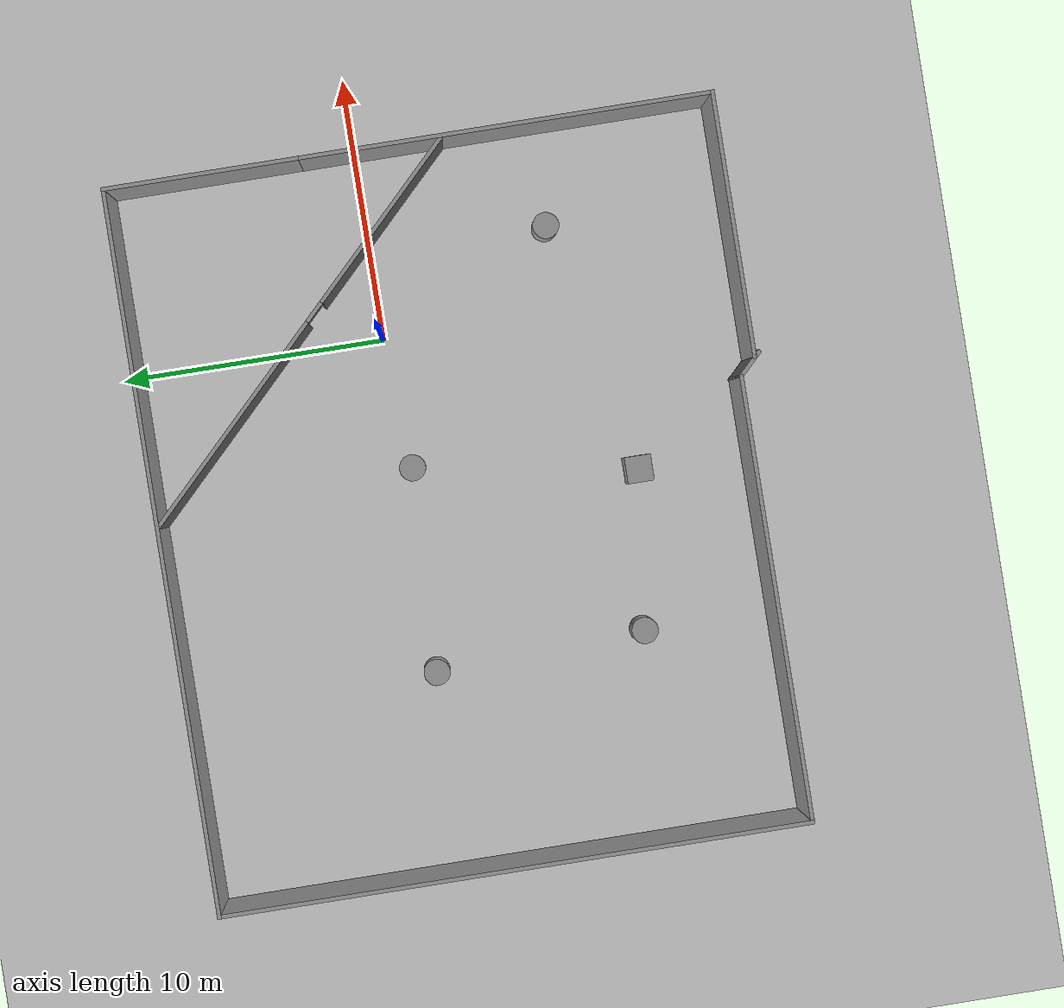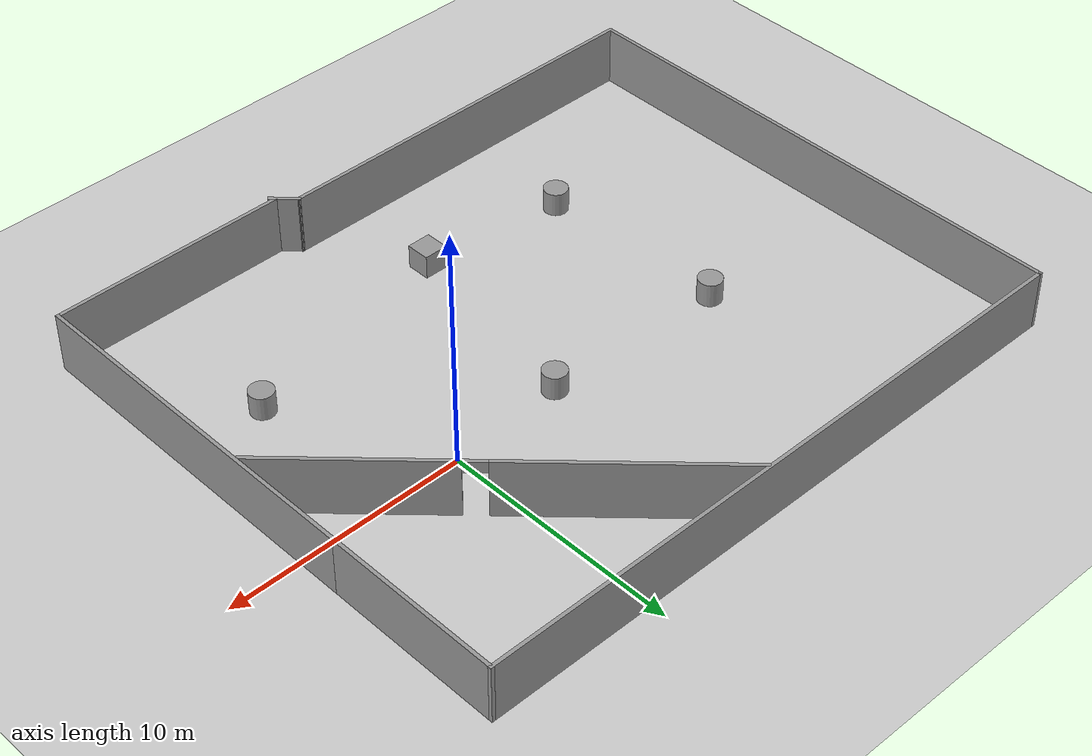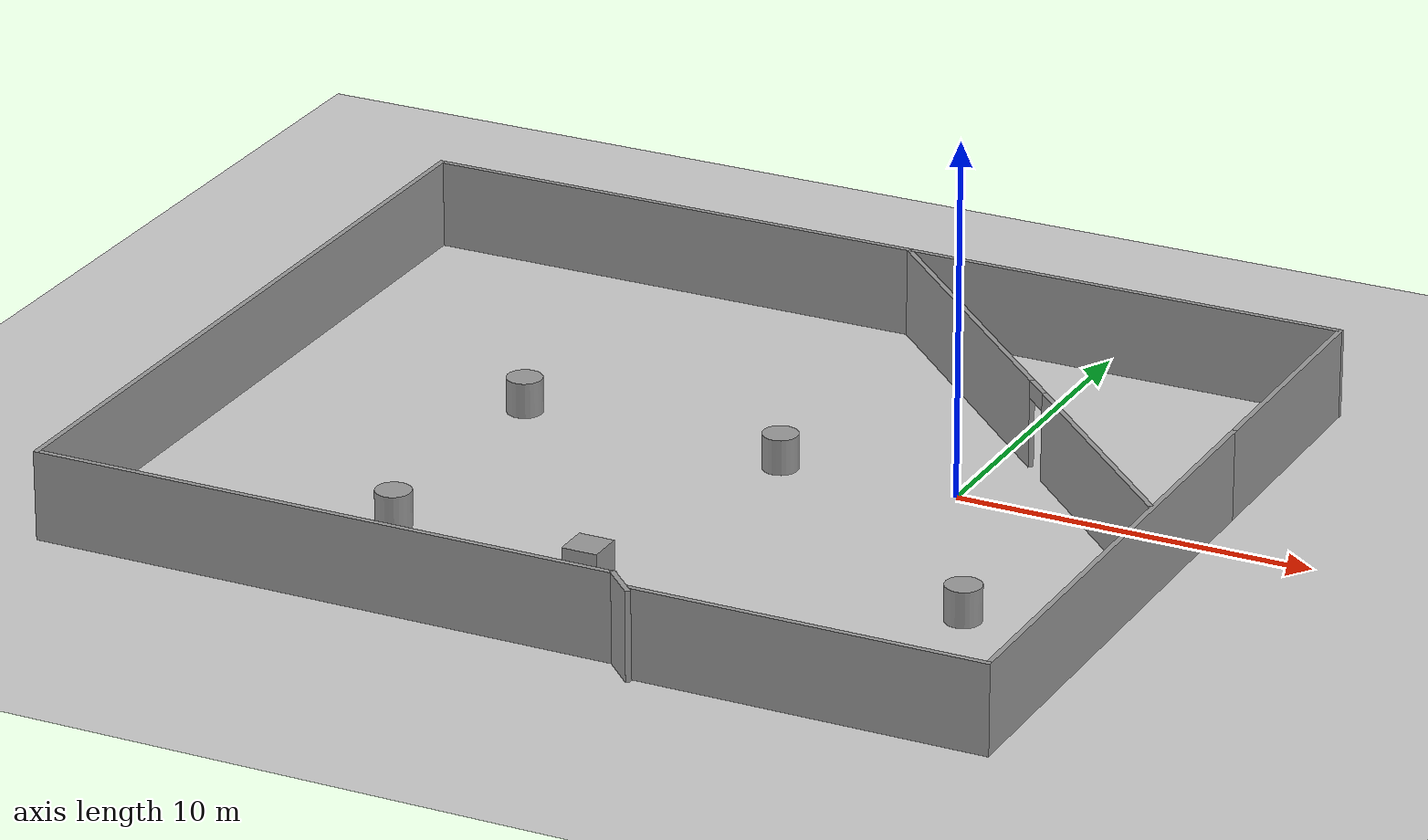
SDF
<sdf version="1.7">
 <world name="default">
  <light name="sun" type="directional">
   <pose>0 0 10 0 -0 0</pose>
   <diffuse>0.8 0.8 0.8 1</diffuse>
   <specular>0.2 0.2 0.2 1</specular>
   <attenuation>
    <range>1000</range>
    <constant>0.9</constant>
    <linear>0.01</linear>
    <quadratic>0.001</quadratic>
   </attenuation>
   <direction>-0.5 0.1 -0.9</direction>
   <spot><inner_angle>0</inner_angle><outer_angle>0</outer_angle><falloff>0</falloff></spot>
  </light>
  <model name="ground_plane">
   <static>1</static>
   <link name="link">
    <collision name="collision">
     <geometry><plane><normal>0 0 1</normal><size>100 100</size></plane></geometry>
     <surface>
      <contact><collide_bitmask>65535</collide_bitmask></contact>
      <friction><ode><mu>100</mu><mu2>50</mu2></ode></friction>
     </surface>
    </collision>
    <visual name="visual">
     <cast_shadows>0</cast_shadows>
     <geometry><plane><normal>0 0 1</normal><size>100 100</size></plane></geometry>
     <material>
      <script><uri>file://media/materials/scripts/gazebo.material</uri><name>Gazebo/Grey</name></script>
     </material>
    </visual>
   </link>
  </model>
  <gravity>0 0 -9.8</gravity>
  <magnetic_field>6e-06 2.3e-05 -4.2e-05</magnetic_field>
  <atmosphere type="adiabatic"/>
  <physics type="ode">
   <max_step_size>0.001</max_step_size>
   <real_time_factor>1</real_time_factor>
   <real_time_update_rate>1000</real_time_update_rate>
  </physics>
  <scene><ambient>0.4 0.4 0.4 1</ambient><background>0.7 0.7 0.7 1</background><shadows>1</shadows></scene>
  <spherical_coordinates>
   <surface_model>EARTH_WGS84</surface_model>
   <latitude_deg>0</latitude_deg>
   <longitude_deg>0</longitude_deg>
   <elevation>0</elevation>
   <heading_deg>0</heading_deg>
  </spherical_coordinates>
  <model name="Untitled_0">
   <pose>-6.60214 -2.16289 0 0 -0 0</pose>
   <link name="Wall_25">
    <collision name="Wall_25_Collision">
     <geometry><box><size>10 0.15 2.5</size></box></geometry>
     <pose>0 0 1.25 0 -0 0</pose>
    </collision>
    <visual name="Wall_25_Visual">
     <pose>0 0 1.25 0 -0 0</pose>
     <geometry><box><size>10 0.15 2.5</size></box></geometry>
     <material>
      <script><uri>file://media/materials/scripts/gazebo.material</uri><name>Gazebo/Grey</name></script>
      <ambient>1 1 1 1</ambient>
     </material>
     <meta><layer>0</layer></meta>
    </visual>
    <pose>8.625 -11.2456 0 0 -0 0</pose>
   </link>
   <link name="Wall_26">
    <collision name="Wall_26_Collision">
     <geometry><box><size>15.5 0.15 2.5</size></box></geometry>
     <pose>0 0 1.25 0 -0 0</pose>
    </collision>
    <visual name="Wall_26_Visual">
     <pose>0 0 1.25 0 -0 0</pose>
     <geometry><box><size>15.5 0.15 2.5</size></box></geometry>
     <material>
      <script><uri>file://media/materials/scripts/gazebo.material</uri><name>Gazebo/Grey</name></script>
      <ambient>1 1 1 1</ambient>
     </material>
     <meta><layer>0</layer></meta>
    </visual>
    <pose>13.55 -3.57056 0 0 -0 1.5708</pose>
   </link>
   <link name="Wall_27">
    <collision name="Wall_27_Collision">
     <geometry><box><size>7.5 0.15 2.5</size></box></geometry>
     <pose>0 0 1.25 0 -0 0</pose>
    </collision>
    <visual name="Wall_27_Visual">
     <pose>0 0 1.25 0 -0 0</pose>
     <geometry><box><size>7.5 0.15 2.5</size></box></geometry>
     <material>
      <script><uri>file://media/materials/scripts/gazebo.material</uri><name>Gazebo/Grey</name></script>
      <ambient>1 1 1 1</ambient>
     </material>
     <meta><layer>0</layer></meta>
    </visual>
    <pose>13.55 7.77944 0 0 -0 1.5708</pose>
   </link>
   <link name="Wall_28">
    <collision name="Wall_28_Collision">
     <geometry><box><size>27.25 0.15 2.5</size></box></geometry>
     <pose>0 0 1.25 0 -0 0</pose>
    </collision>
    <visual name="Wall_28_Visual">
     <pose>0 0 1.25 0 -0 0</pose>
     <geometry><box><size>27.25 0.15 2.5</size></box></geometry>
     <material>
      <script><uri>file://media/materials/scripts/gazebo.material</uri><name>Gazebo/Grey</name></script>
      <ambient>1 1 1 1</ambient>
     </material>
     <meta><layer>0</layer></meta>
    </visual>
    <pose>0 11.4544 0 0 -0 3.14159</pose>
   </link>
   <link name="Wall_29">
    <collision name="Wall_29_Collision">
     <geometry><box><size>22.25 0.15 2.5</size></box></geometry>
     <pose>0 0 1.25 0 -0 0</pose>
    </collision>
    <visual name="Wall_29_Visual">
     <pose>0 0 1.25 0 -0 0</pose>
     <geometry><box><size>22.25 0.15 2.5</size></box></geometry>
     <material>
      <script><uri>file://media/materials/scripts/gazebo.material</uri><name>Gazebo/Grey</name></script>
      <ambient>1 1 1 1</ambient>
     </material>
     <meta><layer>0</layer></meta>
    </visual>
    <pose>-13.55 0.404441 0 0 -0 -1.5708</pose>
   </link>
   <link name="Wall_30">
    <collision name="Wall_30_Collision">
     <geometry><box><size>16.75 0.15 2.5</size></box></geometry>
     <pose>0 0 1.25 0 -0 0</pose>
    </collision>
    <visual name="Wall_30_Visual">
     <pose>0 0 1.25 0 -0 0</pose>
     <geometry><box><size>16.75 0.15 2.5</size></box></geometry>
     <material>
      <script><uri>file://media/materials/scripts/gazebo.material</uri><name>Gazebo/Grey</name></script>
      <ambient>1 1 1 1</ambient>
     </material>
     <meta><layer>0</layer></meta>
    </visual>
    <pose>-5.25 -10.6456 0 0 -0 0</pose>
   </link>
   <link name="Wall_31">
    <collision name="Wall_31_Collision">
     <geometry><box><size>1.25 0.15 2.5</size></box></geometry>
     <pose>0 0 1.25 0 -0 0</pose>
    </collision>
    <visual name="Wall_31_Visual">
     <pose>0 0 1.25 0 -0 0</pose>
     <geometry><box><size>1.25 0.15 2.5</size></box></geometry>
     <material>
      <script><uri>file://media/materials/scripts/gazebo.material</uri><name>Gazebo/Grey</name></script>
      <ambient>1 1 1 1</ambient>
     </material>
     <meta><layer>0</layer></meta>
    </visual>
    <pose>3.43891 -11.0345 0 0 -0 -0.785398</pose>
   </link>
   <link name="Wall_33">
    <pose>7.20636 5.14848 0 0 -0 -0.785398</pose>
    <visual name="Wall_33_Visual_0">
     <pose>-4.19973 0 1.25 0 -0 0</pose>
     <geometry><box><size>9.35055 0.15 2.5</size></box></geometry>
     <material>
      <script><uri>file://media/materials/scripts/gazebo.material</uri><name>Gazebo/Grey</name></script>
      <ambient>1 1 1 1</ambient>
     </material>
     <meta><layer>0</layer></meta>
    </visual>
    <collision name="Wall_33_Collision_0">
     <geometry><box><size>9.35055 0.15 2.5</size></box></geometry>
     <pose>-4.19973 0 1.25 0 -0 0</pose>
    </collision>
    <visual name="Wall_33_Visual_1">
     <pose>5.12527 0 1.25 0 -0 0</pose>
     <geometry><box><size>7.49945 0.15 2.5</size></box></geometry>
     <material>
      <script><uri>file://media/materials/scripts/gazebo.material</uri><name>Gazebo/Grey</name></script>
      <ambient>1 1 1 1</ambient>
     </material>
     <meta><layer>0</layer></meta>
    </visual>
    <collision name="Wall_33_Collision_1">
     <geometry><box><size>7.49945 0.15 2.5</size></box></geometry>
     <pose>5.12527 0 1.25 0 -0 0</pose>
    </collision>
    <visual name="Wall_33_Visual_2">
     <pose>0.925547 0 2.25 0 -0 0</pose>
     <geometry><box><size>0.9 0.15 0.5</size></box></geometry>
     <material>
      <script><uri>file://media/materials/scripts/gazebo.material</uri><name>Gazebo/Grey</name></script>
      <ambient>1 1 1 1</ambient>
     </material>
     <meta><layer>0</layer></meta>
    </visual>
    <collision name="Wall_33_Collision_2">
     <geometry><box><size>0.9 0.15 0.5</size></box></geometry>
     <pose>0.925547 0 2.25 0 -0 0</pose>
    </collision>
   </link>
   <static>1</static>
  </model>
  <model name="unit_box">
   <pose>-6.34744 -8.72715 0.499995 0 1e-05 0</pose>
   <link name="link">
    <inertial>
     <mass>1</mass>
     <inertia>
      <ixx>0.166667</ixx>
      <ixy>0</ixy>
      <ixz>0</ixz>
      <iyy>0.166667</iyy>
      <iyz>0</iyz>
      <izz>0.166667</izz>
     </inertia>
    </inertial>
    <collision name="collision"><geometry><box><size>1 1 1</size></box></geometry></collision>
    <visual name="visual">
     <geometry><box><size>1 1 1</size></box></geometry>
     <material>
      <script><name>Gazebo/Grey</name><uri>file://media/materials/scripts/gazebo.material</uri></script>
     </material>
    </visual>
   </link>
  </model>
  <model name="unit_cylinder">
   <pose>-4.95891 -0.316266 0.499993 -3e-06 -3e-06 0</pose>
   <link name="link">
    <inertial>
     <mass>1</mass>
     <inertia><ixx>0.145833</ixx><ixy>0</ixy><ixz>0</ixz><iyy>0.145833</iyy><iyz>0</iyz><izz>0.125</izz></inertia>
    </inertial>
    <collision name="collision">
     <geometry><cylinder><radius>0.5</radius><length>1</length></cylinder></geometry>
    </collision>
    <visual name="visual">
     <geometry><cylinder><radius>0.5</radius><length>1</length></cylinder></geometry>
     <material>
      <script><name>Gazebo/Grey</name><uri>file://media/materials/scripts/gazebo.material</uri></script>
     </material>
    </visual>
   </link>
  </model>
  <model name="unit_cylinder_0">
   <pose>-12.7036 -0.01644 0.499997 3e-06 4e-06 -0</pose>
   <link name="link">
    <inertial>
     <mass>1</mass>
     <inertia><ixx>0.145833</ixx><ixy>0</ixy><ixz>0</ixz><iyy>0.145833</iyy><iyz>0</iyz><izz>0.125</izz></inertia>
    </inertial>
    <collision name="collision">
     <geometry><cylinder><radius>0.5</radius><length>1</length></cylinder></geometry>
    </collision>
    <visual name="visual">
     <geometry><cylinder><radius>0.5</radius><length>1</length></cylinder></geometry>
     <material>
      <script><name>Gazebo/Grey</name><uri>file://media/materials/scripts/gazebo.material</uri></script>
     </material>
    </visual>
   </link>
  </model>
  <model name="unit_cylinder_1">
   <pose>-12.3834 -7.987 0.499993 -3e-06 -4e-06 -0</pose>
   <link name="link">
    <inertial>
     <mass>1</mass>
     <inertia><ixx>0.145833</ixx><ixy>0</ixy><ixz>0</ixz><iyy>0.145833</iyy><iyz>0</iyz><izz>0.125</izz></inertia>
    </inertial>
    <collision name="collision">
     <geometry><cylinder><radius>0.5</radius><length>1</length></cylinder></geometry>
    </collision>
    <visual name="visual">
     <geometry><cylinder><radius>0.5</radius><length>1</length></cylinder></geometry>
     <material>
      <script><name>Gazebo/Grey</name><uri>file://media/materials/scripts/gazebo.material</uri></script>
     </material>
    </visual>
   </link>
  </model>
  <model name="unit_cylinder_2">
   <pose>3.24662 -6.70231 0.499997 3e-06 4e-06 -0</pose>
   <link name="link">
    <inertial>
     <mass>1</mass>
     <inertia><ixx>0.145833</ixx><ixy>0</ixy><ixz>0</ixz><iyy>0.145833</iyy><iyz>0</iyz><izz>0.125</izz></inertia>
    </inertial>
    <collision name="collision">
     <geometry><cylinder><radius>0.5</radius><length>1</length></cylinder></geometry>
    </collision>
    <visual name="visual">
     <geometry><cylinder><radius>0.5</radius><length>1</length></cylinder></geometry>
     <material>
      <script><name>Gazebo/Grey</name><uri>file://media/materials/scripts/gazebo.material</uri></script>
     </material>
    </visual>
   </link>
  </model>
 </world>
</sdf>
